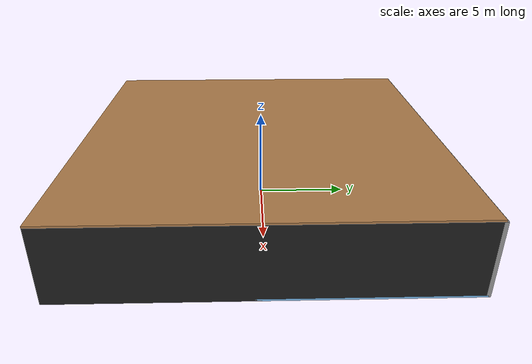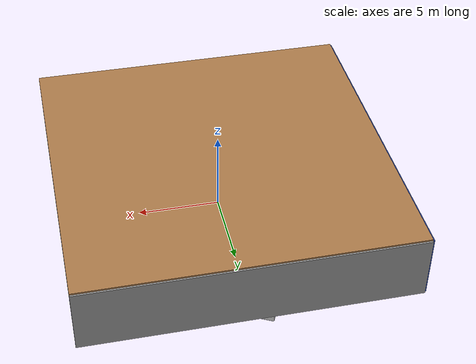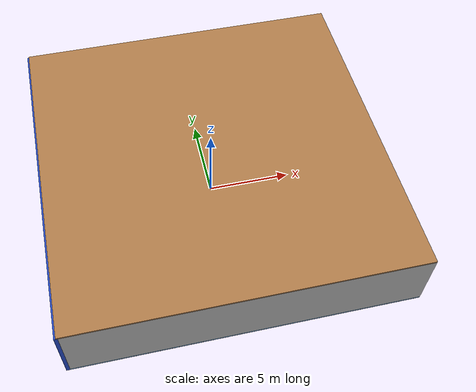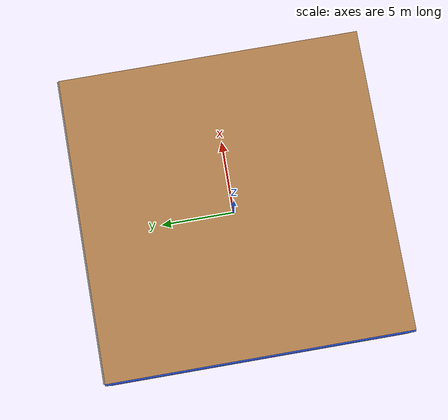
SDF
<sdf version="1.4">
 <world name="default">
  <physics type="ode">
   <max_step_size>0.001</max_step_size>
   <real_time_factor>1</real_time_factor>
   <real_time_update_rate>1000</real_time_update_rate>
   <gravity>0 0 -9.8</gravity>
  </physics>
  <scene><ambient>0.4 0.4 0.4 1</ambient><background>0.7 0.7 0.7 1</background><shadows>1</shadows></scene>
  <model name="Surrounding">
   <static>1</static>
   <link name="Ceiling">
    <collision name="Ceiling_Collision"><geometry><box><size>20 20 0.1</size></box></geometry></collision>
    <visual name="Ceiling_Visual">
     <geometry><box><size>20 20 0.1</size></box></geometry>
     <material>
      <script><uri>file://media/materials/scripts/gazebo.material</uri><name>Gazebo/WoodPallet</name></script>
     </material>
    </visual>
    <pose>0 0 4.05 0 0 0</pose>
   </link>
   <link name="Wall_South">
    <collision name="Wall_South_Collision">
     <geometry><box><size>20 0 4</size></box></geometry>
     <pose>0 0 2 0 -0 0</pose>
    </collision>
    <visual name="Wall_South_Visual">
     <pose>0 0 2 0 -0 0</pose>
     <geometry><box><size>20 0 4</size></box></geometry>
     <material>
      <script><uri>file://media/materials/scripts/gazebo.material</uri><name>Gazebo/Pioneer2Body</name></script>
     </material>
    </visual>
    <velocity_decay><linear>0</linear><angular>0</angular></velocity_decay>
    <pose>0 -10 0 0 -0 0</pose>
   </link>
   <link name="Wall_East">
    <collision name="Wall_21_Collision">
     <geometry><box><size>20 0 4</size></box></geometry>
     <pose>0 0 2 0 -0 0</pose>
    </collision>
    <visual name="Wall_21_Visual">
     <pose>0 0 2 0 -0 0</pose>
     <geometry><box><size>20 0 4</size></box></geometry>
     <material>
      <script><uri>file://media/materials/scripts/gazebo.material</uri><name>Gazebo/FlatBlack</name></script>
     </material>
    </visual>
    <velocity_decay><linear>0</linear><angular>0</angular></velocity_decay>
    <pose>10 0 0 0 -0 1.5708</pose>
   </link>
   <link name="Wall_North">
    <collision name="Wall_22_Collision">
     <geometry><box><size>20 0.2 4</size></box></geometry>
     <pose>0 0 2 0 -0 0</pose>
    </collision>
    <visual name="Wall_22_Visual">
     <pose>0 0 2 0 -0 0</pose>
     <geometry><box><size>20 0.2 4</size></box></geometry>
     <material>
      <script><uri>file://media/materials/scripts/gazebo.material</uri><name>Gazebo/Grey</name></script>
     </material>
    </visual>
    <velocity_decay><linear>0</linear><angular>0</angular></velocity_decay>
    <pose>0 10 0 0 -0 0</pose>
   </link>
   <link name="Wall_West">
    <collision name="Wall_23_Collision">
     <geometry><box><size>20 0.2 4</size></box></geometry>
     <pose>0 0 2 0 -0 0</pose>
    </collision>
    <visual name="Wall_23_Visual">
     <pose>0 0 2 0 -0 0</pose>
     <geometry><box><size>20 0.2 4</size></box></geometry>
     <material>
      <script><uri>file://media/materials/scripts/gazebo.material</uri><name>Gazebo/BlueLaser</name></script>
     </material>
    </visual>
    <velocity_decay><linear>0</linear><angular>0</angular></velocity_decay>
    <pose>-10 0 0 0 0 -1.5708</pose>
   </link>
   <link name="Ground_link">
    <collision name="collision">
     <pose>0 0 .05 0 -0 0</pose>
     <geometry><box><size>20 20 0.1</size></box></geometry>
    </collision>
    <visual name="visual">
     <pose>0 0 .05 0 -0 0</pose>
     <geometry><box><size>20 20 0.1</size></box></geometry>
     <material>
      <script><uri>file://media/materials/scripts/gazebo.material</uri><name>Gazebo/SkyBlue</name></script>
     </material>
    </visual>
   </link>
   <static>1</static>
  </model>
  <spherical_coordinates>
   <surface_model>EARTH_WGS84</surface_model>
   <latitude_deg>0</latitude_deg>
   <longitude_deg>0</longitude_deg>
   <elevation>0</elevation>
   <heading_deg>0</heading_deg>
  </spherical_coordinates>
  <light name="lightball_0" type="diffuse">
   <diffuse>0.8 0.8 0.8 1</diffuse>
   <specular>0.2 0.2 0.2 1</specular>
   <attenuation>
    <range>100</range>
    <constant>0.7</constant>
    <linear>0.01</linear>
    <quadratic>0.001</quadratic>
   </attenuation>
   <direction>-0.5 0.1 -0.9</direction>
   <pose>-1.05755929893 4.08779477801 3.3219202238 0 0 0</pose>
  </light>
  <light name="lightball_1" type="diffuse">
   <diffuse>0.8 0.8 0.8 1</diffuse>
   <specular>0.2 0.2 0.2 1</specular>
   <attenuation>
    <range>100</range>
    <constant>0.7</constant>
    <linear>0.01</linear>
    <quadratic>0.001</quadratic>
   </attenuation>
   <direction>-0.5 0.1 -0.9</direction>
   <pose>-3.00351246655 -2.73707072214 0.664242709152 0 0 0</pose>
  </light>
  <light name="lightball_2" type="diffuse">
   <diffuse>0.8 0.8 0.8 1</diffuse>
   <specular>0.2 0.2 0.2 1</specular>
   <attenuation>
    <range>100</range>
    <constant>0.7</constant>
    <linear>0.01</linear>
    <quadratic>0.001</quadratic>
   </attenuation>
   <direction>-0.5 0.1 -0.9</direction>
   <pose>-3.36453060865 8.02293023992 1.84915000648 0 0 0</pose>
  </light>
  <light name="lightball_3" type="diffuse">
   <diffuse>0.8 0.8 0.8 1</diffuse>
   <specular>0.2 0.2 0.2 1</specular>
   <attenuation>
    <range>100</range>
    <constant>0.7</constant>
    <linear>0.01</linear>
    <quadratic>0.001</quadratic>
   </attenuation>
   <direction>-0.5 0.1 -0.9</direction>
   <pose>0.929066523542 -6.16211764294 1.72460922818 0 0 0</pose>
  </light>
  <light name="lightball_4" type="diffuse">
   <diffuse>0.8 0.8 0.8 1</diffuse>
   <specular>0.2 0.2 0.2 1</specular>
   <attenuation>
    <range>100</range>
    <constant>0.7</constant>
    <linear>0.01</linear>
    <quadratic>0.001</quadratic>
   </attenuation>
   <direction>-0.5 0.1 -0.9</direction>
   <pose>3.05015078617 6.85058332312 3.03529546825 0 0 0</pose>
  </light>
  <light name="lightball_5" type="diffuse">
   <diffuse>0.8 0.8 0.8 1</diffuse>
   <specular>0.2 0.2 0.2 1</specular>
   <attenuation>
    <range>100</range>
    <constant>0.7</constant>
    <linear>0.01</linear>
    <quadratic>0.001</quadratic>
   </attenuation>
   <direction>-0.5 0.1 -0.9</direction>
   <pose>-0.835448436409 9.45616845128 1.91078955378 0 0 0</pose>
  </light>
  <light name="lightball_6" type="diffuse">
   <diffuse>0.8 0.8 0.8 1</diffuse>
   <specular>0.2 0.2 0.2 1</specular>
   <attenuation>
    <range>100</range>
    <constant>0.7</constant>
    <linear>0.01</linear>
    <quadratic>0.001</quadratic>
   </attenuation>
   <direction>-0.5 0.1 -0.9</direction>
   <pose>3.90303687295 0.497670550971 1.70101990323 0 0 0</pose>
  </light>
  <include>
   <uri>model://textured_shapes</uri>
   <pose>-3.83830186727 1.73421576022 0 0 0 2.78842926221</pose>
  </include>
  <include>
   <uri>model://textured_shapes</uri>
   <pose>-1.59108422587 8.00291832453 0 0 0 2.67422993313</pose>
  </include>
  <include><uri>model://cabinet</uri><pose>3.75448079179 2.23638980776 0 0 0 0.595009333033</pose></include>
 </world>
</sdf>

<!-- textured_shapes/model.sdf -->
<sdf version="1.6">
  <model name="textured_shapes">
    <pose>0 0 0.5 0 0 0</pose>
    <link name="box">
      <pose>0 -1.5 0 0 0 0</pose>
      <collision name="collision">
        <geometry>
          <box>
            <size>1 1 1</size>
          </box>
        </geometry>
      </collision>
      <visual name="visual">
        <geometry>
          <box>
            <size>1 1 1</size>
          </box>
        </geometry>
        <material>
          <script>
            <uri>model://../model_source/models/textured_shapes/materials/scripts</uri>
            <uri>model://../model_source/models/textured_shapes/materials/textures</uri>
            <name>TexturedShape/Squares</name>
          </script>
        </material>
      </visual>
    </link>
    <link name="sphere">
      <collision name="collision">
        <geometry>
          <sphere>
            <radius>0.5</radius>
          </sphere>
        </geometry>
      </collision>
      <visual name="visual">
        <geometry>
          <sphere>
            <radius>0.5</radius>
          </sphere>
        </geometry>
        <material>
          <script>
            <uri>model://../model_source/models/textured_shapes/materials/scripts</uri>
            <uri>model://../model_source/models/textured_shapes/materials/textures</uri>
            <name>TexturedShape/Squares</name>
          </script>
        </material>
      </visual>
    </link>
    <link name="cylinder">
      <pose>0 1.5 0 0 0 0</pose>
      <collision name="collision">
        <geometry>
          <cylinder>
            <radius>0.5</radius>
            <length>1</length>
          </cylinder>
        </geometry>
      </collision>
      <visual name="visual">
        <geometry>
          <cylinder>
            <radius>0.5</radius>
            <length>1</length>
          </cylinder>
        </geometry>
        <material>
          <script>
            <uri>model://../model_source/models/textured_shapes/materials/scripts</uri>
            <uri>model://../model_source/models/textured_shapes/materials/textures</uri>
            <name>TexturedShape/Squares</name>
          </script>
        </material>
      </visual>
    </link>
  </model>
</sdf>

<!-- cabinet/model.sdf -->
<sdf version="1.5">
  <model name="cabinet">
    <static>true</static>
    <link name="cabinet_bottom_plate">
      <inertial>
        <pose>0 0 -1 0 0 0</pose>
        <inertia>
          <ixx>2.050000</ixx>
          <ixy>0</ixy>
          <ixz>0</ixz>
          <iyy>2.050000</iyy>
          <iyz>0</iyz>
          <izz>2.050000</izz>
        </inertia>
        <mass>25.000000</mass>
      </inertial>
      <collision name="cabinet_bottom_plate_geom">
        <pose>0 0 0.010000 0 0 0</pose>
        <geometry>
          <box>
            <size>0.450000 0.450000 0.020000</size>
          </box>
        </geometry>
      </collision>
      <visual name="cabinet_bottom_plate_geom_visual">
        <pose>0 0 0.010000 0 0 0</pose>
        <geometry>
          <box>
            <size>0.450000 0.450000 0.020000</size>
          </box>
        </geometry>
        <material>
          <script>
            <uri>model://media/materials/scripts/gazebo.material</uri>
            <name>Gazebo/Wood</name>
          </script>
        </material>
      </visual>
      <collision name="cabinet_bottom_plate_geom_cabinet_back_plate">
        <pose>0.235000 0 0.510000 0 0 0</pose>
        <geometry>
          <box>
            <size>0.020000 0.450000 1.020000</size>
          </box>
        </geometry>
      </collision>
      <visual name="cabinet_bottom_plate_geom_cabinet_back_plate_visual">
        <pose>0.235000 0 0.510000 0 0 0</pose>
        <geometry>
          <box>
            <size>0.020000 0.450000 1.020000</size>
          </box>
        </geometry>
        <material>
          <script>
            <uri>model://media/materials/scripts/gazebo.material</uri>
            <name>Gazebo/Wood</name>
          </script>
        </material>
      </visual>
      <collision name="cabinet_bottom_plate_geom_cabinet_left_plate">
        <pose>0 0.235000 0.510000 0 0 0</pose>
        <geometry>
          <box>
            <size>0.450000 0.020000 1.020000</size>
          </box>
        </geometry>
      </collision>
      <visual name="cabinet_bottom_plate_geom_cabinet_left_plate_visual">
        <pose>0 0.235000 0.510000 0 0 0</pose>
        <geometry>
          <box>
            <size>0.450000 0.020000 1.020000</size>
          </box>
        </geometry>
        <material>
          <script>
            <uri>model://media/materials/scripts/gazebo.material</uri>
            <name>Gazebo/Wood</name>
          </script>
        </material>
      </visual>
      <collision name="cabinet_bottom_plate_geom_cabinet_middle_plate">
        <pose>0 0 0.510000 0 0 0</pose>
        <geometry>
          <box>
            <size>0.450000 0.450000 0.020000</size>
          </box>
        </geometry>
      </collision>
      <visual name="cabinet_bottom_plate_geom_cabinet_middle_plate_visual">
        <pose>0 0 0.510000 0 0 0</pose>
        <geometry>
          <box>
            <size>0.450000 0.450000 0.020000</size>
          </box>
        </geometry>
        <material>
          <script>
            <uri>model://media/materials/scripts/gazebo.material</uri>
            <name>Gazebo/Wood</name>
          </script>
        </material>
      </visual>
      <collision name="cabinet_bottom_plate_geom_cabinet_right_plate">
        <pose>0 -0.235000 0.510000 0 0 0</pose>
        <geometry>
          <box>
            <size>0.450000 0.020000 1.020000</size>
          </box>
        </geometry>
      </collision>
      <visual name="cabinet_bottom_plate_geom_cabinet_right_plate_visual">
        <pose>0 -0.235000 0.510000 0 0 0</pose>
        <geometry>
          <box>
            <size>0.450000 0.020000 1.020000</size>
          </box>
        </geometry>
        <material>
          <script>
            <uri>model://media/materials/scripts/gazebo.material</uri>
            <name>Gazebo/Wood</name>
          </script>
        </material>
      </visual>
      <collision name="cabinet_bottom_plate_geom_cabinet_top_plate">
        <pose>0 0 1.010000 0 0 0</pose>
        <geometry>
          <box>
            <size>0.450000 0.450000 0.020000</size>
          </box>
        </geometry>
      </collision>
      <visual name="cabinet_bottom_plate_geom_cabinet_top_plate_visual">
        <pose>0 0 1.010000 0 0 0</pose>
        <geometry>
          <box>
            <size>0.450000 0.450000 0.020000</size>
          </box>
        </geometry>
        <material>
          <script>
            <uri>model://media/materials/scripts/gazebo.material</uri>
            <name>Gazebo/Wood</name>
          </script>
        </material>
      </visual>
    </link>
  </model>
</sdf>
